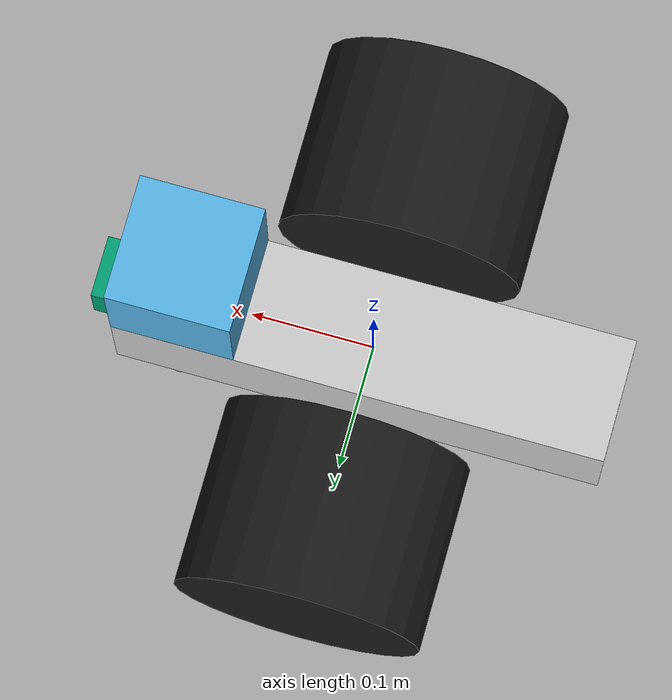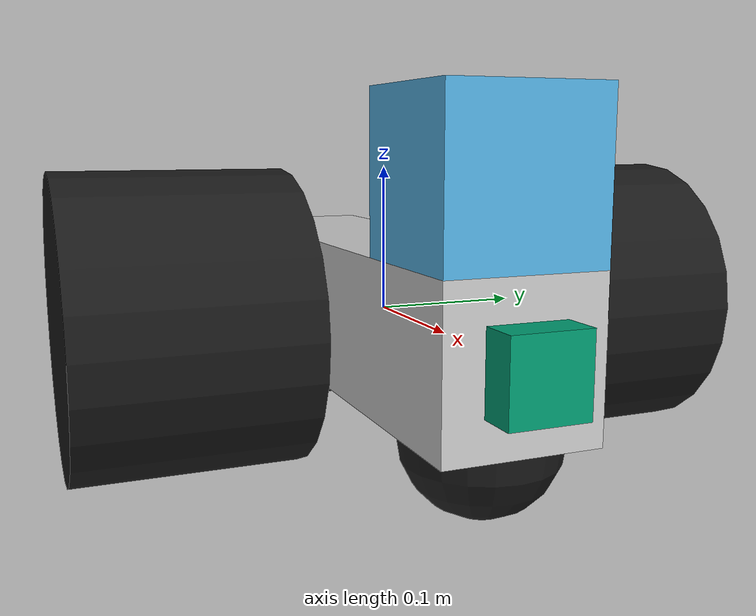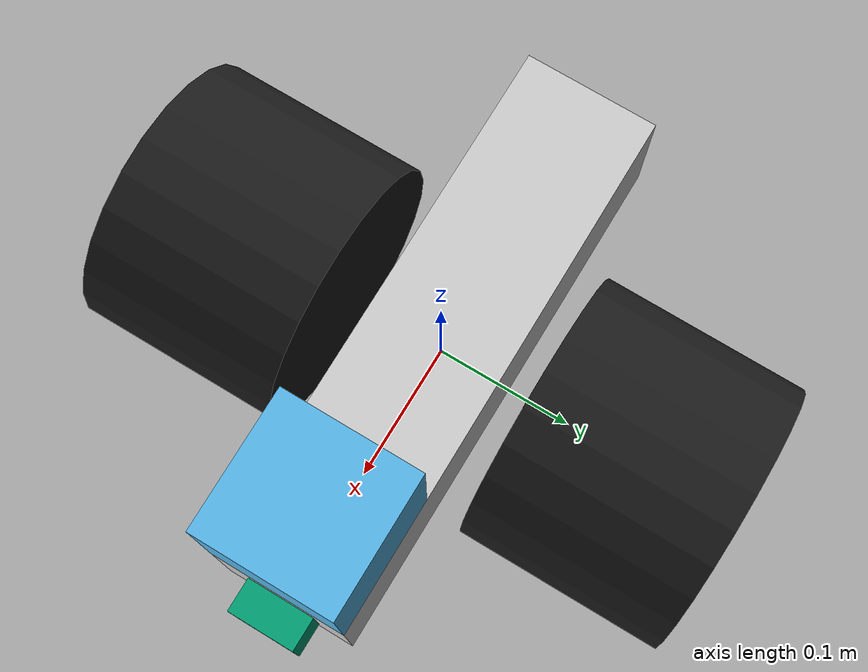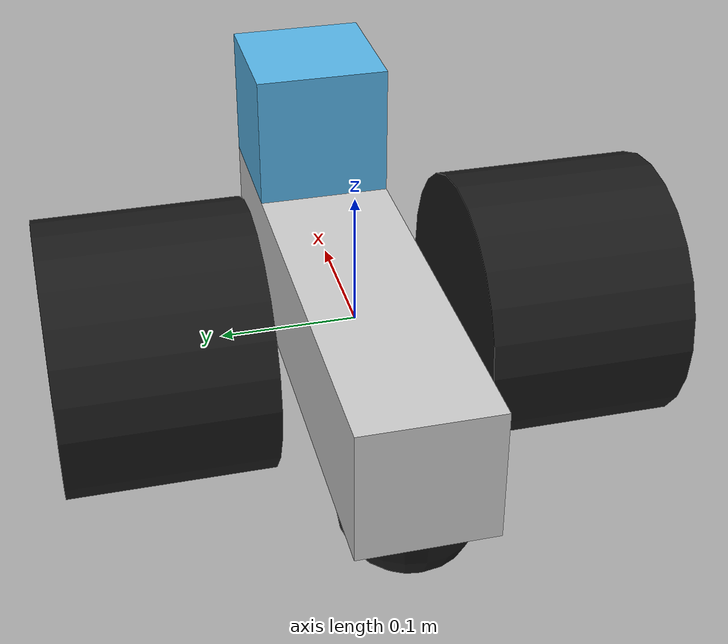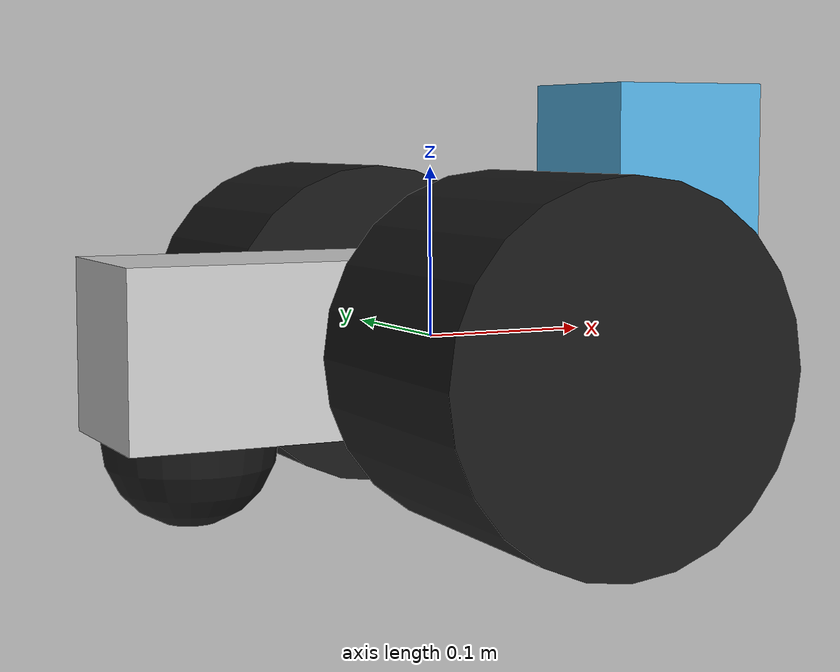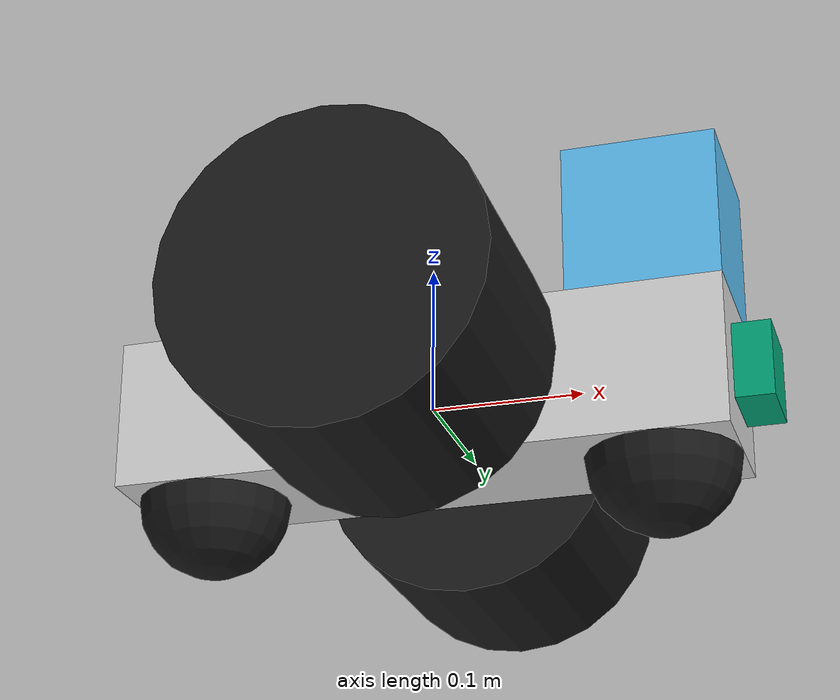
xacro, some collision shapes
<?xml version='1.0'?>

<robot name="my_robot" xmlns:xacro="http://www.ros.org/wiki/xacro">

  <xacro:include filename="$(find my_robot)/urdf/my_robot.gazebo" />

  <link name="robot_footprint"></link>

  <joint name="robot_footprint_joint" type="fixed">
    <origin xyz="0 0 0" rpy="0 0 0" />
    <parent link="robot_footprint"/>
    <child link="chassis" />
  </joint>

  <joint type="continuous" name="left_wheel_hinge">
    <origin xyz="0 0.15 0" rpy="0 0 0"/>
    <child link="left_wheel"/>
    <parent link="chassis"/>
    <axis xyz="0 1 0" rpy="0 0 0"/>
    <limit effort="10000" velocity="1000"/>
    <dynamics damping="1.0" friction="1.0"/>
  </joint>

  <joint type="continuous" name="right_wheel_hinge">
    <origin xyz="0 -0.15 0" rpy="0 0 0"/>
    <child link="right_wheel"/>
    <parent link="chassis"/>
    <axis xyz="0 1 0" rpy="0 0 0"/>
    <limit effort="10000" velocity="1000"/>
    <dynamics damping="1.0" friction="1.0"/>
  </joint>

  <joint type="fixed" name="camera_joint">
    <origin xyz="0.2 0 0" rpy="0 0 0"/>
    <child link="camera_link"/>
    <parent link="chassis"/>
    <axis xyz="0 1 0" rpy="0 0 0"/>
  </joint>

  <joint type="fixed" name="hokuyo_joint">
    <origin xyz="0.15 0 0.1" rpy="0 0 0"/>
    <child link="hokuyo"/>
    <parent link="chassis"/>
    <axis xyz="0 1 0" rpy="0 0 0"/>
  </joint>

  <link name="hokuyo">
    <inertial>
      <mass value="1e-5"/>
      <origin xyz="0 0 0" rpy="0 0 0"/>
      <inertia
        ixx="1e-6"
        ixy="0"
        ixz="0"
        iyy="1e-6"
        iyz="0"
        izz="1e-6"
      />
    </inertial>

    <collision name='camera_collision'>
      <origin xyz="0 0 0" rpy="0 0 0"/>
      <geometry>
        <box size="0.1 0.1 0.1" />
      </geometry>
    </collision>

    <visual name='camera_visual'>
      <origin xyz="0 0 0" rpy="0 0 0"/>
      <geometry>
        <mesh filename="package://my_robot/meshes/hokuyo.dae"/>
      </geometry>
    </visual>
  </link>

  <link name="camera_link">
    <inertial>
      <mass value="0.1"/>
      <origin xyz="0 0 0" rpy="0 0 0"/>
      <inertia
        ixx="1e-6"
        ixy="0"
        ixz="0"
        iyy="1e-6"
        iyz="0"
        izz="1e-6"
      />
    </inertial>

    <collision name='camera_collision'>
      <origin xyz="0 0 0" rpy="0 0 0"/>
      <geometry>
        <box size="0.05 0.05 0.05" />
      </geometry>
    </collision>

    <visual name='camera_visual'>
      <origin xyz="0 0 0" rpy="0 0 0"/>
      <geometry>
        <box size="0.05 0.05 0.05" />
      </geometry>
    </visual>
  </link>

 <joint name="camera_optical_joint" type="fixed">
    <origin xyz="0 0 0" rpy="-1.5707 0 -1.5707"/>
    <parent link="camera_link"/>
    <child link="camera_link_optical"/>
  </joint>

  <link name="camera_link_optical">
  </link>

  <link name="left_wheel">
    <inertial>
      <mass value="5.0"/>
      <origin xyz="0 0 0" rpy="0 1.5707 1.5707"/>
      <inertia
          ixx="0.1" ixy="0" ixz="0"
          iyy="0.1" iyz="0"
          izz="0.1"
      />
    </inertial>

    <collision name='left_wheel_collision'>
      <origin xyz="0 0 0" rpy="0 1.5707 1.5707"/>
      <geometry>
        <cylinder radius="0.1" length="0.15" />
      </geometry>
    </collision>

    <visual name='left_wheel_visual'>
      <origin xyz="0 0 0" rpy="0 1.5707 1.5707"/>
      <geometry>
        <cylinder radius="0.1" length="0.15" />
      </geometry>
      <material name="black">
        <color rgba="0.1 0.1 0.1 1.0"/>
      </material>
    </visual>
  </link>

  <link name="right_wheel">
    <inertial>
      <mass value="5.0"/>
      <origin xyz="0.0 0 0" rpy="0 1.5707 1.5707"/>
      <inertia
          ixx="0.1" ixy="0" ixz="0"
          iyy="0.1" iyz="0"
          izz="0.1"
      />
    </inertial>

    <collision name='right_wheel_collision'>
      <origin xyz="0.0 0 0" rpy="0 1.5707 1.5707"/>
      <geometry>
        <cylinder radius="0.1" length="0.15" />
      </geometry>
    </collision>

    <visual name='right_wheel_visual'>
      <origin xyz="0.0 0 0" rpy="0 1.5707 1.5707"/>
      <geometry>
        <cylinder radius="0.1" length="0.15" />
      </geometry>
      <material name="black">
        <color rgba="0.1 0.1 0.1 1.0"/>
      </material>
    </visual>
  </link>

  <link name='chassis'>
    <pose>0 0 0.1 0 0 0</pose>

    <inertial>
      <mass value="15.0"/>
      <origin xyz="0.0 0 0" rpy=" 0 0 0"/>
      <inertia
          ixx="0.1" ixy="0" ixz="0"
          iyy="0.1" iyz="0"
          izz="0.1"
      />
    </inertial>

    <collision name='chassis_collision'>
      <origin xyz="0 0 0" rpy=" 0 0 0"/>
      <geometry>
        <box size=".4 .1 .1"/>
      </geometry>
    </collision>

    <visual name='chassis_visual'>
      <origin xyz="0 0 0" rpy=" 0 0 0"/>
      <geometry>
        <box size=".4 .1 .1"/>
      </geometry>
      <material name="metal">
        <color rgba="0.8 0.8 0.8 1.0"/>
      </material>
    </visual>

    <collision name='back_caster_collision'>
      <origin xyz="-0.15 0 -0.05" rpy=" 0 0 0"/>
      <geometry>
        <sphere radius="0.0499"/>
      </geometry>
    </collision>

    <visual name='back_caster_visual'>
      <origin xyz="-0.15 0 -0.05" rpy=" 0 0 0"/>
      <geometry>
        <sphere radius="0.05"/>
      </geometry>
      <material name="black">
        <color rgba="0.1 0.1 0.1 1.0"/>
      </material>
    </visual>

    <collision name='front_caster_collision'>
      <origin xyz="0.15 0 -0.05" rpy=" 0 0 0"/>
      <geometry>
        <sphere radius="0.0499"/>
      </geometry>
    </collision>

    <visual name='front_caster_visual'>
      <origin xyz="0.15 0 -0.05" rpy=" 0 0 0"/>
      <geometry>
        <sphere radius="0.05"/>
      </geometry>
      <material name="black">
        <color rgba="0.1 0.1 0.1 1.0"/>
      </material>
    </visual>

  </link>

</robot>
